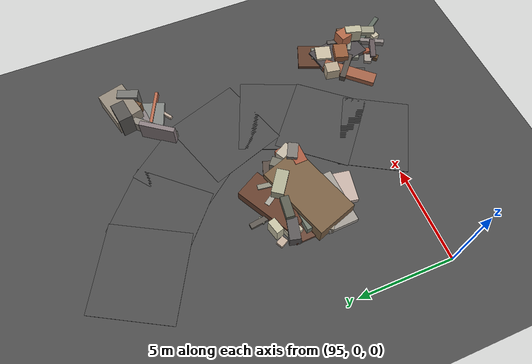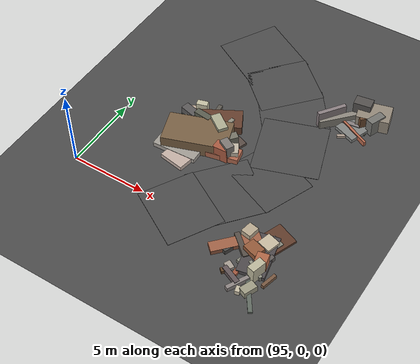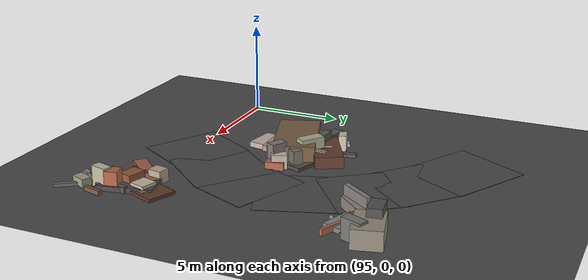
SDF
<sdf version="1.6">
 <world name="navitas_arena">
  <model name="ground_plane">
   <static>true</static>
   <link name="link">
    <collision name="collision">
     <geometry><plane><normal>0 0 1</normal><size>400 400</size></plane></geometry>
     <surface><friction><ode><mu>0.800</mu><mu2>0.800</mu2></ode></friction></surface>
    </collision>
    <visual name="visual">
     <cast_shadows>false</cast_shadows>
     <geometry><plane><normal>0 0 1</normal><size>400 400</size></plane></geometry>
     <material>
      <specular>0.04 0.04 0.04 1</specular>
      <script>
       <uri>file://media/materials/scripts/navitas_asphalt.material</uri>
       <name>Navitas/RealArenaAsphalt</name>
      </script>
     </material>
    </visual>
   </link>
  </model>
  <model name="road_zor_3_14">
   <static>true</static>
   <pose>102.558 0.167 0.040 0 0 1.047</pose>
   <link name="link">
    <collision name="col"><geometry><box><size>3.594 4.200 0.020</size></box></geometry></collision>
    <visual name="vis">
     <geometry><box><size>3.594 4.200 0.020</size></box></geometry>
     <material>
      <specular>0.04 0.04 0.04 1</specular>
      <script>
       <uri>file://media/materials/scripts/navitas_asphalt.material</uri>
       <name>Navitas/RealArenaAsphalt</name>
      </script>
     </material>
    </visual>
   </link>
  </model>
  <model name="road_zor_3_15">
   <static>true</static>
   <pose>104.213 2.500 0.040 0 0 0.871</pose>
   <link name="link">
    <collision name="col"><geometry><box><size>3.949 4.200 0.020</size></box></geometry></collision>
    <visual name="vis">
     <geometry><box><size>3.949 4.200 0.020</size></box></geometry>
     <material>
      <specular>0.04 0.04 0.04 1</specular>
      <script>
       <uri>file://media/materials/scripts/navitas_asphalt.material</uri>
       <name>Navitas/RealArenaAsphalt</name>
      </script>
     </material>
    </visual>
   </link>
  </model>
  <model name="road_zor_3_16">
   <static>true</static>
   <pose>105.679 4.833 0.040 0 0 1.177</pose>
   <link name="link">
    <collision name="col"><geometry><box><size>3.427 4.200 0.020</size></box></geometry></collision>
    <visual name="vis">
     <geometry><box><size>3.427 4.200 0.020</size></box></geometry>
     <material>
      <specular>0.04 0.04 0.04 1</specular>
      <script>
       <uri>file://media/materials/scripts/navitas_asphalt.material</uri>
       <name>Navitas/RealArenaAsphalt</name>
      </script>
     </material>
    </visual>
   </link>
  </model>
  <model name="road_zor_3_17">
   <static>true</static>
   <pose>105.639 7.566 0.040 0 0 1.894</pose>
   <link name="link">
    <collision name="col"><geometry><box><size>4.202 4.200 0.020</size></box></geometry></collision>
    <visual name="vis">
     <geometry><box><size>4.202 4.200 0.020</size></box></geometry>
     <material>
      <specular>0.04 0.04 0.04 1</specular>
      <script>
       <uri>file://media/materials/scripts/navitas_asphalt.material</uri>
       <name>Navitas/RealArenaAsphalt</name>
      </script>
     </material>
    </visual>
   </link>
  </model>
  <model name="road_zor_3_18">
   <static>true</static>
   <pose>104.328 10.157 0.040 0 0 2.225</pose>
   <link name="link">
    <collision name="col"><geometry><box><size>3.484 4.200 0.020</size></box></geometry></collision>
    <visual name="vis">
     <geometry><box><size>3.484 4.200 0.020</size></box></geometry>
     <material>
      <specular>0.04 0.04 0.04 1</specular>
      <script>
       <uri>file://media/materials/scripts/navitas_asphalt.material</uri>
       <name>Navitas/RealArenaAsphalt</name>
      </script>
     </material>
    </visual>
   </link>
  </model>
  <model name="road_zor_3_19">
   <static>true</static>
   <pose>102.519 12.091 0.040 0 0 2.415</pose>
   <link name="link">
    <collision name="col"><geometry><box><size>3.636 4.200 0.020</size></box></geometry></collision>
    <visual name="vis">
     <geometry><box><size>3.636 4.200 0.020</size></box></geometry>
     <material>
      <specular>0.04 0.04 0.04 1</specular>
      <script>
       <uri>file://media/materials/scripts/navitas_asphalt.material</uri>
       <name>Navitas/RealArenaAsphalt</name>
      </script>
     </material>
    </visual>
   </link>
  </model>
  <model name="road_zor_3_20">
   <static>true</static>
   <pose>99.948 13.861 0.040 0 0 2.634</pose>
   <link name="link">
    <collision name="col"><geometry><box><size>4.443 4.200 0.020</size></box></geometry></collision>
    <visual name="vis">
     <geometry><box><size>4.443 4.200 0.020</size></box></geometry>
     <material>
      <specular>0.04 0.04 0.04 1</specular>
      <script>
       <uri>file://media/materials/scripts/navitas_asphalt.material</uri>
       <name>Navitas/RealArenaAsphalt</name>
      </script>
     </material>
    </visual>
   </link>
  </model>
  <model name="deb_zor_8">
   <static>true</static>
   <pose>102.190 5.623 0.000 0 0 0</pose>
   <link name="link">
    <collision name="col_0">
     <pose>0.512 -0.691 0.608 0.000 0.000 1.076</pose>
     <geometry><box><size>0.536 0.849 1.216</size></box></geometry>
    </collision>
    <visual name="vis_0">
     <pose>0.512 -0.691 0.608 0.000 0.000 1.076</pose>
     <geometry><box><size>0.536 0.849 1.216</size></box></geometry>
     <material>
      <ambient>0.46 0.44 0.43 1</ambient>
      <diffuse>0.50 0.48 0.46 1</diffuse>
      <specular>0.05 0.05 0.045 1</specular>
     </material>
    </visual>
    <collision name="col_1">
     <pose>0.870 -0.426 0.378 0.000 0.000 0.501</pose>
     <geometry><box><size>0.507 0.813 0.756</size></box></geometry>
    </collision>
    <visual name="vis_1">
     <pose>0.870 -0.426 0.378 0.000 0.000 0.501</pose>
     <geometry><box><size>0.507 0.813 0.756</size></box></geometry>
     <material>
      <ambient>0.71 0.66 0.61 1</ambient>
      <diffuse>0.76 0.72 0.65 1</diffuse>
      <specular>0.05 0.05 0.045 1</specular>
     </material>
    </visual>
    <collision name="col_2">
     <pose>0.439 -0.686 0.128 0.000 0.000 0.502</pose>
     <geometry><box><size>1.207 0.236 0.255</size></box></geometry>
    </collision>
    <visual name="vis_2">
     <pose>0.439 -0.686 0.128 0.000 0.000 0.502</pose>
     <geometry><box><size>1.207 0.236 0.255</size></box></geometry>
     <material>
      <ambient>0.53 0.49 0.44 1</ambient>
      <diffuse>0.58 0.53 0.48 1</diffuse>
      <specular>0.05 0.05 0.045 1</specular>
     </material>
    </visual>
    <collision name="col_3">
     <pose>-0.618 0.152 0.070 0.000 0.000 2.048</pose>
     <geometry><box><size>1.197 0.206 0.140</size></box></geometry>
    </collision>
    <visual name="vis_3">
     <pose>-0.618 0.152 0.070 0.000 0.000 2.048</pose>
     <geometry><box><size>1.197 0.206 0.140</size></box></geometry>
     <material>
      <ambient>0.49 0.33 0.28 1</ambient>
      <diffuse>0.53 0.35 0.31 1</diffuse>
      <specular>0.05 0.05 0.045 1</specular>
     </material>
    </visual>
    <collision name="col_4">
     <pose>-0.214 0.234 0.099 0.000 0.000 1.710</pose>
     <geometry><box><size>1.182 0.122 0.198</size></box></geometry>
    </collision>
    <visual name="vis_4">
     <pose>-0.214 0.234 0.099 0.000 0.000 1.710</pose>
     <geometry><box><size>1.182 0.122 0.198</size></box></geometry>
     <material>
      <ambient>0.50 0.49 0.49 1</ambient>
      <diffuse>0.54 0.53 0.53 1</diffuse>
      <specular>0.05 0.05 0.045 1</specular>
     </material>
    </visual>
    <collision name="col_5">
     <pose>0.289 0.218 0.454 0.000 0.000 2.430</pose>
     <geometry><box><size>0.509 0.716 0.908</size></box></geometry>
    </collision>
    <visual name="vis_5">
     <pose>0.289 0.218 0.454 0.000 0.000 2.430</pose>
     <geometry><box><size>0.509 0.716 0.908</size></box></geometry>
     <material>
      <ambient>0.43 0.42 0.38 1</ambient>
      <diffuse>0.47 0.46 0.41 1</diffuse>
      <specular>0.05 0.05 0.045 1</specular>
     </material>
    </visual>
   </link>
  </model>
  <model name="deb_zor_50">
   <static>true</static>
   <pose>108.417 -1.913 0.000 0 0 0</pose>
   <link name="link">
    <collision name="col_0">
     <pose>0.464 -0.715 0.213 0.000 0.000 1.177</pose>
     <geometry><box><size>0.853 0.514 0.425</size></box></geometry>
    </collision>
    <visual name="vis_0">
     <pose>0.464 -0.715 0.213 0.000 0.000 1.177</pose>
     <geometry><box><size>0.853 0.514 0.425</size></box></geometry>
     <material>
      <ambient>0.58 0.57 0.49 1</ambient>
      <diffuse>0.63 0.62 0.53 1</diffuse>
      <specular>0.05 0.05 0.045 1</specular>
     </material>
    </visual>
    <collision name="col_1">
     <pose>0.290 0.975 0.496 0.000 0.000 1.788</pose>
     <geometry><box><size>0.669 0.689 0.993</size></box></geometry>
    </collision>
    <visual name="vis_1">
     <pose>0.290 0.975 0.496 0.000 0.000 1.788</pose>
     <geometry><box><size>0.669 0.689 0.993</size></box></geometry>
     <material>
      <ambient>0.65 0.38 0.26 1</ambient>
      <diffuse>0.70 0.41 0.28 1</diffuse>
      <specular>0.05 0.05 0.045 1</specular>
     </material>
    </visual>
    <collision name="col_2">
     <pose>-0.827 -0.438 0.165 0.000 0.000 2.722</pose>
     <geometry><box><size>1.259 0.297 0.330</size></box></geometry>
    </collision>
    <visual name="vis_2">
     <pose>-0.827 -0.438 0.165 0.000 0.000 2.722</pose>
     <geometry><box><size>1.259 0.297 0.330</size></box></geometry>
     <material>
      <ambient>0.36 0.32 0.32 1</ambient>
      <diffuse>0.39 0.34 0.35 1</diffuse>
      <specular>0.05 0.05 0.045 1</specular>
     </material>
    </visual>
    <collision name="col_3">
     <pose>0.319 0.364 0.543 0.000 0.000 1.294</pose>
     <geometry><box><size>0.909 0.482 1.086</size></box></geometry>
    </collision>
    <visual name="vis_3">
     <pose>0.319 0.364 0.543 0.000 0.000 1.294</pose>
     <geometry><box><size>0.909 0.482 1.086</size></box></geometry>
     <material>
      <ambient>0.69 0.68 0.57 1</ambient>
      <diffuse>0.75 0.73 0.62 1</diffuse>
      <specular>0.05 0.05 0.045 1</specular>
     </material>
    </visual>
    <collision name="col_4">
     <pose>1.112 0.360 0.124 0.000 0.000 1.325</pose>
     <geometry><box><size>1.017 0.198 0.247</size></box></geometry>
    </collision>
    <visual name="vis_4">
     <pose>1.112 0.360 0.124 0.000 0.000 1.325</pose>
     <geometry><box><size>1.017 0.198 0.247</size></box></geometry>
     <material>
      <ambient>0.44 0.32 0.24 1</ambient>
      <diffuse>0.48 0.35 0.26 1</diffuse>
      <specular>0.05 0.05 0.045 1</specular>
     </material>
    </visual>
    <collision name="col_5">
     <pose>0.601 -0.892 0.081 0.000 0.000 2.187</pose>
     <geometry><box><size>2.334 0.253 0.162</size></box></geometry>
    </collision>
    <visual name="vis_5">
     <pose>0.601 -0.892 0.081 0.000 0.000 2.187</pose>
     <geometry><box><size>2.334 0.253 0.162</size></box></geometry>
     <material>
      <ambient>0.35 0.39 0.35 1</ambient>
      <diffuse>0.38 0.42 0.38 1</diffuse>
      <specular>0.05 0.05 0.045 1</specular>
     </material>
    </visual>
    <collision name="col_6">
     <pose>0.005 -1.027 0.154 0.000 0.000 3.381</pose>
     <geometry><box><size>0.272 0.408 0.307</size></box></geometry>
    </collision>
    <visual name="vis_6">
     <pose>0.005 -1.027 0.154 0.000 0.000 3.381</pose>
     <geometry><box><size>0.272 0.408 0.307</size></box></geometry>
     <material>
      <ambient>0.73 0.68 0.60 1</ambient>
      <diffuse>0.78 0.74 0.65 1</diffuse>
      <specular>0.05 0.05 0.045 1</specular>
     </material>
    </visual>
   </link>
  </model>
  <model name="deb_zor_67">
   <static>true</static>
   <pose>108.276 10.808 0.000 0 0 0</pose>
   <link name="link">
    <collision name="col_0">
     <pose>-0.188 0.277 0.061 0.000 0.000 -0.184</pose>
     <geometry><box><size>1.859 0.137 0.121</size></box></geometry>
    </collision>
    <visual name="vis_0">
     <pose>-0.188 0.277 0.061 0.000 0.000 -0.184</pose>
     <geometry><box><size>1.859 0.137 0.121</size></box></geometry>
     <material>
      <ambient>0.36 0.37 0.33 1</ambient>
      <diffuse>0.39 0.40 0.35 1</diffuse>
      <specular>0.05 0.05 0.045 1</specular>
     </material>
    </visual>
    <collision name="col_1">
     <pose>-0.500 0.344 0.143 0.000 0.000 0.112</pose>
     <geometry><box><size>1.434 0.310 0.285</size></box></geometry>
    </collision>
    <visual name="vis_1">
     <pose>-0.500 0.344 0.143 0.000 0.000 0.112</pose>
     <geometry><box><size>1.434 0.310 0.285</size></box></geometry>
     <material>
      <ambient>0.49 0.46 0.46 1</ambient>
      <diffuse>0.53 0.50 0.50 1</diffuse>
      <specular>0.05 0.05 0.045 1</specular>
     </material>
    </visual>
    <collision name="col_2">
     <pose>0.039 -0.160 0.165 0.000 0.000 -0.452</pose>
     <geometry><box><size>2.307 0.162 0.331</size></box></geometry>
    </collision>
    <visual name="vis_2">
     <pose>0.039 -0.160 0.165 0.000 0.000 -0.452</pose>
     <geometry><box><size>2.307 0.162 0.331</size></box></geometry>
     <material>
      <ambient>0.67 0.39 0.29 1</ambient>
      <diffuse>0.72 0.42 0.31 1</diffuse>
      <specular>0.05 0.05 0.045 1</specular>
     </material>
    </visual>
    <collision name="col_3">
     <pose>-0.054 0.332 0.124 0.000 0.000 1.220</pose>
     <geometry><box><size>2.009 1.501 0.249</size></box></geometry>
    </collision>
    <visual name="vis_3">
     <pose>-0.054 0.332 0.124 0.000 0.000 1.220</pose>
     <geometry><box><size>2.009 1.501 0.249</size></box></geometry>
     <material>
      <ambient>0.47 0.48 0.47 1</ambient>
      <diffuse>0.51 0.52 0.51 1</diffuse>
      <specular>0.05 0.05 0.045 1</specular>
     </material>
    </visual>
    <collision name="col_4">
     <pose>-0.256 -0.626 0.089 0.000 0.000 0.593</pose>
     <geometry><box><size>1.070 0.155 0.179</size></box></geometry>
    </collision>
    <visual name="vis_4">
     <pose>-0.256 -0.626 0.089 0.000 0.000 0.593</pose>
     <geometry><box><size>1.070 0.155 0.179</size></box></geometry>
     <material>
      <ambient>0.69 0.62 0.56 1</ambient>
      <diffuse>0.74 0.67 0.61 1</diffuse>
      <specular>0.05 0.05 0.045 1</specular>
     </material>
    </visual>
   </link>
  </model>
  <model name="deb_zor_145">
   <static>true</static>
   <pose>107.622 -1.942 0.000 0 0 0</pose>
   <link name="link">
    <collision name="col_0">
     <pose>-0.600 -0.330 0.121 0.000 0.000 0.842</pose>
     <geometry><box><size>0.251 0.279 0.243</size></box></geometry>
    </collision>
    <visual name="vis_0">
     <pose>-0.600 -0.330 0.121 0.000 0.000 0.842</pose>
     <geometry><box><size>0.251 0.279 0.243</size></box></geometry>
     <material>
      <ambient>0.38 0.26 0.17 1</ambient>
      <diffuse>0.41 0.29 0.18 1</diffuse>
      <specular>0.05 0.05 0.045 1</specular>
     </material>
    </visual>
    <collision name="col_1">
     <pose>-0.480 0.115 0.101 0.000 0.000 2.640</pose>
     <geometry><box><size>0.520 0.410 0.202</size></box></geometry>
    </collision>
    <visual name="vis_1">
     <pose>-0.480 0.115 0.101 0.000 0.000 2.640</pose>
     <geometry><box><size>0.520 0.410 0.202</size></box></geometry>
     <material>
      <ambient>0.61 0.58 0.53 1</ambient>
      <diffuse>0.66 0.62 0.58 1</diffuse>
      <specular>0.05 0.05 0.045 1</specular>
     </material>
    </visual>
    <collision name="col_2">
     <pose>0.060 -0.048 0.096 0.000 0.000 1.558</pose>
     <geometry><box><size>0.437 0.269 0.192</size></box></geometry>
    </collision>
    <visual name="vis_2">
     <pose>0.060 -0.048 0.096 0.000 0.000 1.558</pose>
     <geometry><box><size>0.437 0.269 0.192</size></box></geometry>
     <material>
      <ambient>0.59 0.32 0.23 1</ambient>
      <diffuse>0.64 0.35 0.25 1</diffuse>
      <specular>0.05 0.05 0.045 1</specular>
     </material>
    </visual>
    <collision name="col_3">
     <pose>0.622 -0.466 0.147 0.000 0.000 1.082</pose>
     <geometry><box><size>1.798 0.246 0.294</size></box></geometry>
    </collision>
    <visual name="vis_3">
     <pose>0.622 -0.466 0.147 0.000 0.000 1.082</pose>
     <geometry><box><size>1.798 0.246 0.294</size></box></geometry>
     <material>
      <ambient>0.51 0.49 0.48 1</ambient>
      <diffuse>0.56 0.53 0.52 1</diffuse>
      <specular>0.05 0.05 0.045 1</specular>
     </material>
    </visual>
   </link>
  </model>
  <model name="deb_zor_167">
   <static>true</static>
   <pose>99.680 4.952 0.000 0 0 0</pose>
   <link name="link">
    <collision name="col_0">
     <pose>0.128 -0.548 0.076 0.000 0.000 0.109</pose>
     <geometry><box><size>0.228 0.387 0.152</size></box></geometry>
    </collision>
    <visual name="vis_0">
     <pose>0.128 -0.548 0.076 0.000 0.000 0.109</pose>
     <geometry><box><size>0.228 0.387 0.152</size></box></geometry>
     <material>
      <ambient>0.74 0.71 0.65 1</ambient>
      <diffuse>0.79 0.76 0.71 1</diffuse>
      <specular>0.05 0.05 0.045 1</specular>
     </material>
    </visual>
    <collision name="col_1">
     <pose>0.179 1.111 0.088 0.000 0.000 0.038</pose>
     <geometry><box><size>2.829 1.074 0.175</size></box></geometry>
    </collision>
    <visual name="vis_1">
     <pose>0.179 1.111 0.088 0.000 0.000 0.038</pose>
     <geometry><box><size>2.829 1.074 0.175</size></box></geometry>
     <material>
      <ambient>0.39 0.26 0.20 1</ambient>
      <diffuse>0.42 0.28 0.22 1</diffuse>
      <specular>0.05 0.05 0.045 1</specular>
     </material>
    </visual>
    <collision name="col_2">
     <pose>0.065 -0.096 0.124 0.000 0.000 -0.614</pose>
     <geometry><box><size>2.058 0.301 0.249</size></box></geometry>
    </collision>
    <visual name="vis_2">
     <pose>0.065 -0.096 0.124 0.000 0.000 -0.614</pose>
     <geometry><box><size>2.058 0.301 0.249</size></box></geometry>
     <material>
      <ambient>0.36 0.34 0.29 1</ambient>
      <diffuse>0.38 0.37 0.31 1</diffuse>
      <specular>0.05 0.05 0.045 1</specular>
     </material>
    </visual>
    <collision name="col_3">
     <pose>0.752 -0.733 0.147 0.000 0.000 1.394</pose>
     <geometry><box><size>3.200 1.651 0.294</size></box></geometry>
    </collision>
    <visual name="vis_3">
     <pose>0.752 -0.733 0.147 0.000 0.000 1.394</pose>
     <geometry><box><size>3.200 1.651 0.294</size></box></geometry>
     <material>
      <ambient>0.72 0.65 0.61 1</ambient>
      <diffuse>0.78 0.70 0.66 1</diffuse>
      <specular>0.05 0.05 0.045 1</specular>
     </material>
    </visual>
    <collision name="col_4">
     <pose>0.138 -0.814 0.156 0.000 0.000 0.040</pose>
     <geometry><box><size>2.897 1.578 0.312</size></box></geometry>
    </collision>
    <visual name="vis_4">
     <pose>0.138 -0.814 0.156 0.000 0.000 0.040</pose>
     <geometry><box><size>2.897 1.578 0.312</size></box></geometry>
     <material>
      <ambient>0.60 0.58 0.54 1</ambient>
      <diffuse>0.64 0.62 0.59 1</diffuse>
      <specular>0.05 0.05 0.045 1</specular>
     </material>
    </visual>
    <collision name="col_5">
     <pose>0.594 -0.602 0.095 0.000 0.000 -0.638</pose>
     <geometry><box><size>1.125 0.213 0.190</size></box></geometry>
    </collision>
    <visual name="vis_5">
     <pose>0.594 -0.602 0.095 0.000 0.000 -0.638</pose>
     <geometry><box><size>1.125 0.213 0.190</size></box></geometry>
     <material>
      <ambient>0.75 0.71 0.61 1</ambient>
      <diffuse>0.81 0.77 0.66 1</diffuse>
      <specular>0.05 0.05 0.045 1</specular>
     </material>
    </visual>
   </link>
  </model>
  <model name="deb_zor_193">
   <static>true</static>
   <pose>107.903 -0.961 0.000 0 0 0</pose>
   <link name="link">
    <collision name="col_0">
     <pose>0.253 0.759 0.117 0.000 0.000 1.204</pose>
     <geometry><box><size>2.720 0.764 0.234</size></box></geometry>
    </collision>
    <visual name="vis_0">
     <pose>0.253 0.759 0.117 0.000 0.000 1.204</pose>
     <geometry><box><size>2.720 0.764 0.234</size></box></geometry>
     <material>
      <ambient>0.49 0.49 0.45 1</ambient>
      <diffuse>0.53 0.53 0.48 1</diffuse>
      <specular>0.05 0.05 0.045 1</specular>
     </material>
    </visual>
    <collision name="col_1">
     <pose>0.655 -0.388 0.150 0.000 0.000 2.600</pose>
     <geometry><box><size>1.259 0.207 0.301</size></box></geometry>
    </collision>
    <visual name="vis_1">
     <pose>0.655 -0.388 0.150 0.000 0.000 2.600</pose>
     <geometry><box><size>1.259 0.207 0.301</size></box></geometry>
     <material>
      <ambient>0.53 0.54 0.49 1</ambient>
      <diffuse>0.58 0.58 0.52 1</diffuse>
      <specular>0.05 0.05 0.045 1</specular>
     </material>
    </visual>
    <collision name="col_2">
     <pose>-0.023 0.565 0.334 0.000 0.000 2.841</pose>
     <geometry><box><size>0.960 0.747 0.667</size></box></geometry>
    </collision>
    <visual name="vis_2">
     <pose>-0.023 0.565 0.334 0.000 0.000 2.841</pose>
     <geometry><box><size>0.960 0.747 0.667</size></box></geometry>
     <material>
      <ambient>0.54 0.33 0.21 1</ambient>
      <diffuse>0.59 0.36 0.23 1</diffuse>
      <specular>0.05 0.05 0.045 1</specular>
     </material>
    </visual>
    <collision name="col_3">
     <pose>0.818 -0.059 0.161 0.000 0.000 1.329</pose>
     <geometry><box><size>1.920 0.251 0.322</size></box></geometry>
    </collision>
    <visual name="vis_3">
     <pose>0.818 -0.059 0.161 0.000 0.000 1.329</pose>
     <geometry><box><size>1.920 0.251 0.322</size></box></geometry>
     <material>
      <ambient>0.35 0.34 0.32 1</ambient>
      <diffuse>0.38 0.36 0.35 1</diffuse>
      <specular>0.05 0.05 0.045 1</specular>
     </material>
    </visual>
   </link>
  </model>
  <model name="deb_zor_203">
   <static>true</static>
   <pose>107.409 0.213 0.000 0 0 0</pose>
   <link name="link">
    <collision name="col_0">
     <pose>0.760 -0.596 0.135 0.000 0.000 1.773</pose>
     <geometry><box><size>2.872 1.665 0.269</size></box></geometry>
    </collision>
    <visual name="vis_0">
     <pose>0.760 -0.596 0.135 0.000 0.000 1.773</pose>
     <geometry><box><size>2.872 1.665 0.269</size></box></geometry>
     <material>
      <ambient>0.29 0.27 0.28 1</ambient>
      <diffuse>0.31 0.29 0.30 1</diffuse>
      <specular>0.05 0.05 0.045 1</specular>
     </material>
    </visual>
    <collision name="col_1">
     <pose>0.962 0.608 0.082 0.000 0.000 1.189</pose>
     <geometry><box><size>2.192 1.508 0.163</size></box></geometry>
    </collision>
    <visual name="vis_1">
     <pose>0.962 0.608 0.082 0.000 0.000 1.189</pose>
     <geometry><box><size>2.192 1.508 0.163</size></box></geometry>
     <material>
      <ambient>0.35 0.22 0.16 1</ambient>
      <diffuse>0.38 0.24 0.17 1</diffuse>
      <specular>0.05 0.05 0.045 1</specular>
     </material>
    </visual>
    <collision name="col_2">
     <pose>-0.799 -0.576 0.152 0.000 0.000 0.823</pose>
     <geometry><box><size>2.977 0.686 0.304</size></box></geometry>
    </collision>
    <visual name="vis_2">
     <pose>-0.799 -0.576 0.152 0.000 0.000 0.823</pose>
     <geometry><box><size>2.977 0.686 0.304</size></box></geometry>
     <material>
      <ambient>0.59 0.36 0.26 1</ambient>
      <diffuse>0.64 0.39 0.28 1</diffuse>
      <specular>0.05 0.05 0.045 1</specular>
     </material>
    </visual>
    <collision name="col_3">
     <pose>-0.744 -0.740 0.151 0.000 0.000 1.175</pose>
     <geometry><box><size>1.474 0.289 0.302</size></box></geometry>
    </collision>
    <visual name="vis_3">
     <pose>-0.744 -0.740 0.151 0.000 0.000 1.175</pose>
     <geometry><box><size>1.474 0.289 0.302</size></box></geometry>
     <material>
      <ambient>0.28 0.27 0.26 1</ambient>
      <diffuse>0.30 0.29 0.28 1</diffuse>
      <specular>0.05 0.05 0.045 1</specular>
     </material>
    </visual>
    <collision name="col_4">
     <pose>0.887 0.281 0.213 0.000 0.000 2.863</pose>
     <geometry><box><size>0.868 0.870 0.425</size></box></geometry>
    </collision>
    <visual name="vis_4">
     <pose>0.887 0.281 0.213 0.000 0.000 2.863</pose>
     <geometry><box><size>0.868 0.870 0.425</size></box></geometry>
     <material>
      <ambient>0.74 0.69 0.59 1</ambient>
      <diffuse>0.79 0.74 0.64 1</diffuse>
      <specular>0.05 0.05 0.045 1</specular>
     </material>
    </visual>
    <collision name="col_5">
     <pose>-0.387 -0.571 0.171 0.000 0.000 2.429</pose>
     <geometry><box><size>1.709 0.318 0.342</size></box></geometry>
    </collision>
    <visual name="vis_5">
     <pose>-0.387 -0.571 0.171 0.000 0.000 2.429</pose>
     <geometry><box><size>1.709 0.318 0.342</size></box></geometry>
     <material>
      <ambient>0.31 0.29 0.26 1</ambient>
      <diffuse>0.34 0.31 0.28 1</diffuse>
      <specular>0.05 0.05 0.045 1</specular>
     </material>
    </visual>
    <collision name="col_6">
     <pose>-0.387 0.344 0.329 0.000 0.000 2.962</pose>
     <geometry><box><size>0.640 0.748 0.657</size></box></geometry>
    </collision>
    <visual name="vis_6">
     <pose>-0.387 0.344 0.329 0.000 0.000 2.962</pose>
     <geometry><box><size>0.640 0.748 0.657</size></box></geometry>
     <material>
      <ambient>0.67 0.62 0.53 1</ambient>
      <diffuse>0.73 0.67 0.57 1</diffuse>
      <specular>0.05 0.05 0.045 1</specular>
     </material>
    </visual>
   </link>
  </model>
  <model name="deb_zor_241">
   <static>true</static>
   <pose>99.491 7.049 0.000 0 0 0</pose>
   <link name="link">
    <collision name="col_0">
     <pose>0.576 -0.679 0.510 0.000 0.000 3.024</pose>
     <geometry><box><size>1.113 0.428 1.019</size></box></geometry>
    </collision>
    <visual name="vis_0">
     <pose>0.576 -0.679 0.510 0.000 0.000 3.024</pose>
     <geometry><box><size>1.113 0.428 1.019</size></box></geometry>
     <material>
      <ambient>0.34 0.35 0.30 1</ambient>
      <diffuse>0.36 0.37 0.32 1</diffuse>
      <specular>0.05 0.05 0.045 1</specular>
     </material>
    </visual>
    <collision name="col_1">
     <pose>0.712 0.587 0.076 0.000 0.000 2.383</pose>
     <geometry><box><size>0.264 0.354 0.152</size></box></geometry>
    </collision>
    <visual name="vis_1">
     <pose>0.712 0.587 0.076 0.000 0.000 2.383</pose>
     <geometry><box><size>0.264 0.354 0.152</size></box></geometry>
     <material>
      <ambient>0.52 0.52 0.46 1</ambient>
      <diffuse>0.56 0.56 0.50 1</diffuse>
      <specular>0.05 0.05 0.045 1</specular>
     </material>
    </visual>
    <collision name="col_2">
     <pose>-0.076 0.191 0.455 0.000 0.000 3.409</pose>
     <geometry><box><size>0.710 0.401 0.910</size></box></geometry>
    </collision>
    <visual name="vis_2">
     <pose>-0.076 0.191 0.455 0.000 0.000 3.409</pose>
     <geometry><box><size>0.710 0.401 0.910</size></box></geometry>
     <material>
      <ambient>0.73 0.71 0.60 1</ambient>
      <diffuse>0.78 0.76 0.65 1</diffuse>
      <specular>0.05 0.05 0.045 1</specular>
     </material>
    </visual>
    <collision name="col_3">
     <pose>-0.203 -0.526 0.232 0.000 0.000 3.444</pose>
     <geometry><box><size>1.036 0.739 0.465</size></box></geometry>
    </collision>
    <visual name="vis_3">
     <pose>-0.203 -0.526 0.232 0.000 0.000 3.444</pose>
     <geometry><box><size>1.036 0.739 0.465</size></box></geometry>
     <material>
      <ambient>0.70 0.68 0.59 1</ambient>
      <diffuse>0.76 0.73 0.64 1</diffuse>
      <specular>0.05 0.05 0.045 1</specular>
     </material>
    </visual>
    <collision name="col_4">
     <pose>0.756 0.112 0.089 0.000 0.000 1.696</pose>
     <geometry><box><size>2.240 0.275 0.178</size></box></geometry>
    </collision>
    <visual name="vis_4">
     <pose>0.756 0.112 0.089 0.000 0.000 1.696</pose>
     <geometry><box><size>2.240 0.275 0.178</size></box></geometry>
     <material>
      <ambient>0.34 0.32 0.29 1</ambient>
      <diffuse>0.37 0.35 0.32 1</diffuse>
      <specular>0.05 0.05 0.045 1</specular>
     </material>
    </visual>
    <collision name="col_5">
     <pose>-0.435 -0.710 0.140 0.000 0.000 3.086</pose>
     <geometry><box><size>1.253 0.163 0.279</size></box></geometry>
    </collision>
    <visual name="vis_5">
     <pose>-0.435 -0.710 0.140 0.000 0.000 3.086</pose>
     <geometry><box><size>1.253 0.163 0.279</size></box></geometry>
     <material>
      <ambient>0.37 0.40 0.38 1</ambient>
      <diffuse>0.40 0.43 0.42 1</diffuse>
      <specular>0.05 0.05 0.045 1</specular>
     </material>
    </visual>
   </link>
  </model>
  <model name="deb_zor_265">
   <static>true</static>
   <pose>99.242 5.437 0.000 0 0 0</pose>
   <link name="link">
    <collision name="col_0">
     <pose>-0.222 0.256 0.061 0.000 0.000 1.063</pose>
     <geometry><box><size>0.389 0.200 0.122</size></box></geometry>
    </collision>
    <visual name="vis_0">
     <pose>-0.222 0.256 0.061 0.000 0.000 1.063</pose>
     <geometry><box><size>0.389 0.200 0.122</size></box></geometry>
     <material>
      <ambient>0.48 0.43 0.41 1</ambient>
      <diffuse>0.51 0.47 0.45 1</diffuse>
      <specular>0.05 0.05 0.045 1</specular>
     </material>
    </visual>
    <collision name="col_1">
     <pose>-0.370 -0.913 0.238 0.000 0.000 2.482</pose>
     <geometry><box><size>1.097 0.427 0.477</size></box></geometry>
    </collision>
    <visual name="vis_1">
     <pose>-0.370 -0.913 0.238 0.000 0.000 2.482</pose>
     <geometry><box><size>1.097 0.427 0.477</size></box></geometry>
     <material>
      <ambient>0.59 0.56 0.49 1</ambient>
      <diffuse>0.64 0.60 0.53 1</diffuse>
      <specular>0.05 0.05 0.045 1</specular>
     </material>
    </visual>
    <collision name="col_2">
     <pose>-0.471 0.076 0.112 0.000 0.000 3.174</pose>
     <geometry><box><size>0.209 0.231 0.223</size></box></geometry>
    </collision>
    <visual name="vis_2">
     <pose>-0.471 0.076 0.112 0.000 0.000 3.174</pose>
     <geometry><box><size>0.209 0.231 0.223</size></box></geometry>
     <material>
      <ambient>0.62 0.36 0.23 1</ambient>
      <diffuse>0.67 0.39 0.25 1</diffuse>
      <specular>0.05 0.05 0.045 1</specular>
     </material>
    </visual>
    <collision name="col_3">
     <pose>0.759 -0.557 0.131 0.000 0.000 1.749</pose>
     <geometry><box><size>0.468 0.263 0.261</size></box></geometry>
    </collision>
    <visual name="vis_3">
     <pose>0.759 -0.557 0.131 0.000 0.000 1.749</pose>
     <geometry><box><size>0.468 0.263 0.261</size></box></geometry>
     <material>
      <ambient>0.37 0.24 0.16 1</ambient>
      <diffuse>0.40 0.26 0.18 1</diffuse>
      <specular>0.05 0.05 0.045 1</specular>
     </material>
    </visual>
   </link>
  </model>
  <model name="deb_zor_278">
   <static>true</static>
   <pose>99.612 6.830 0.000 0 0 0</pose>
   <link name="link">
    <collision name="col_0">
     <pose>-0.809 0.324 0.099 0.000 0.000 2.047</pose>
     <geometry><box><size>0.445 0.357 0.198</size></box></geometry>
    </collision>
    <visual name="vis_0">
     <pose>-0.809 0.324 0.099 0.000 0.000 2.047</pose>
     <geometry><box><size>0.445 0.357 0.198</size></box></geometry>
     <material>
      <ambient>0.70 0.63 0.56 1</ambient>
      <diffuse>0.76 0.68 0.61 1</diffuse>
      <specular>0.05 0.05 0.045 1</specular>
     </material>
    </visual>
    <collision name="col_1">
     <pose>0.076 -0.062 0.206 0.000 0.000 1.059</pose>
     <geometry><box><size>0.576 0.623 0.412</size></box></geometry>
    </collision>
    <visual name="vis_1">
     <pose>0.076 -0.062 0.206 0.000 0.000 1.059</pose>
     <geometry><box><size>0.576 0.623 0.412</size></box></geometry>
     <material>
      <ambient>0.62 0.35 0.26 1</ambient>
      <diffuse>0.67 0.38 0.28 1</diffuse>
      <specular>0.05 0.05 0.045 1</specular>
     </material>
    </visual>
    <collision name="col_2">
     <pose>0.777 0.323 0.086 0.000 0.000 1.180</pose>
     <geometry><box><size>0.186 0.317 0.171</size></box></geometry>
    </collision>
    <visual name="vis_2">
     <pose>0.777 0.323 0.086 0.000 0.000 1.180</pose>
     <geometry><box><size>0.186 0.317 0.171</size></box></geometry>
     <material>
      <ambient>0.45 0.47 0.43 1</ambient>
      <diffuse>0.49 0.51 0.46 1</diffuse>
      <specular>0.05 0.05 0.045 1</specular>
     </material>
    </visual>
    <collision name="col_3">
     <pose>-0.595 -0.336 0.374 0.000 0.000 2.893</pose>
     <geometry><box><size>1.122 0.551 0.748</size></box></geometry>
    </collision>
    <visual name="vis_3">
     <pose>-0.595 -0.336 0.374 0.000 0.000 2.893</pose>
     <geometry><box><size>1.122 0.551 0.748</size></box></geometry>
     <material>
      <ambient>0.34 0.33 0.32 1</ambient>
      <diffuse>0.36 0.35 0.35 1</diffuse>
      <specular>0.05 0.05 0.045 1</specular>
     </material>
    </visual>
   </link>
  </model>
  <model name="deb_zor_307">
   <static>true</static>
   <pose>101.447 5.305 0.000 0 0 0</pose>
   <link name="link">
    <collision name="col_0">
     <pose>0.154 1.037 0.093 0.000 0.000 -0.341</pose>
     <geometry><box><size>2.996 1.119 0.186</size></box></geometry>
    </collision>
    <visual name="vis_0">
     <pose>0.154 1.037 0.093 0.000 0.000 -0.341</pose>
     <geometry><box><size>2.996 1.119 0.186</size></box></geometry>
     <material>
      <ambient>0.32 0.28 0.25 1</ambient>
      <diffuse>0.35 0.30 0.27 1</diffuse>
      <specular>0.05 0.05 0.045 1</specular>
     </material>
    </visual>
    <collision name="col_1">
     <pose>0.080 0.307 0.078 0.000 0.000 2.087</pose>
     <geometry><box><size>0.298 0.370 0.157</size></box></geometry>
    </collision>
    <visual name="vis_1">
     <pose>0.080 0.307 0.078 0.000 0.000 2.087</pose>
     <geometry><box><size>0.298 0.370 0.157</size></box></geometry>
     <material>
      <ambient>0.50 0.54 0.50 1</ambient>
      <diffuse>0.54 0.58 0.54 1</diffuse>
      <specular>0.05 0.05 0.045 1</specular>
     </material>
    </visual>
    <collision name="col_2">
     <pose>0.809 -0.422 0.205 0.000 0.000 0.198</pose>
     <geometry><box><size>2.517 0.955 0.410</size></box></geometry>
    </collision>
    <visual name="vis_2">
     <pose>0.809 -0.422 0.205 0.000 0.000 0.198</pose>
     <geometry><box><size>2.517 0.955 0.410</size></box></geometry>
     <material>
      <ambient>0.64 0.38 0.29 1</ambient>
      <diffuse>0.69 0.41 0.31 1</diffuse>
      <specular>0.05 0.05 0.045 1</specular>
     </material>
    </visual>
    <collision name="col_3">
     <pose>-0.076 -0.227 0.184 0.000 0.000 0.495</pose>
     <geometry><box><size>0.545 0.487 0.369</size></box></geometry>
    </collision>
    <visual name="vis_3">
     <pose>-0.076 -0.227 0.184 0.000 0.000 0.495</pose>
     <geometry><box><size>0.545 0.487 0.369</size></box></geometry>
     <material>
      <ambient>0.36 0.35 0.32 1</ambient>
      <diffuse>0.39 0.37 0.35 1</diffuse>
      <specular>0.05 0.05 0.045 1</specular>
     </material>
    </visual>
    <collision name="col_4">
     <pose>1.024 -0.539 0.509 0.000 0.000 1.604</pose>
     <geometry><box><size>0.648 0.964 1.018</size></box></geometry>
    </collision>
    <visual name="vis_4">
     <pose>1.024 -0.539 0.509 0.000 0.000 1.604</pose>
     <geometry><box><size>0.648 0.964 1.018</size></box></geometry>
     <material>
      <ambient>0.62 0.33 0.24 1</ambient>
      <diffuse>0.67 0.36 0.26 1</diffuse>
      <specular>0.05 0.05 0.045 1</specular>
     </material>
    </visual>
   </link>
  </model>
  <model name="chic_zor_4">
   <static>true</static>
   <pose>101.034 5.130 0.000 0 0 0</pose>
   <link name="link">
    <collision name="col_0">
     <pose>-0.349 1.662 0.307 0.000 0.000 0.498</pose>
     <geometry><box><size>3.339 1.489 0.615</size></box></geometry>
    </collision>
    <visual name="vis_0">
     <pose>-0.349 1.662 0.307 0.000 0.000 0.498</pose>
     <geometry><box><size>3.339 1.489 0.615</size></box></geometry>
     <material>
      <ambient>0.37 0.24 0.17 1</ambient>
      <diffuse>0.40 0.25 0.18 1</diffuse>
      <specular>0.05 0.05 0.045 1</specular>
     </material>
    </visual>
    <collision name="col_1">
     <pose>0.193 1.209 0.316 0.000 0.000 -0.988</pose>
     <geometry><box><size>1.992 0.268 0.632</size></box></geometry>
    </collision>
    <visual name="vis_1">
     <pose>0.193 1.209 0.316 0.000 0.000 -0.988</pose>
     <geometry><box><size>1.992 0.268 0.632</size></box></geometry>
     <material>
      <ambient>0.61 0.60 0.57 1</ambient>
      <diffuse>0.66 0.65 0.61 1</diffuse>
      <specular>0.05 0.05 0.045 1</specular>
     </material>
    </visual>
    <collision name="col_2">
     <pose>-0.537 -0.072 0.497 0.000 0.000 0.325</pose>
     <geometry><box><size>4.086 2.202 0.994</size></box></geometry>
    </collision>
    <visual name="vis_2">
     <pose>-0.537 -0.072 0.497 0.000 0.000 0.325</pose>
     <geometry><box><size>4.086 2.202 0.994</size></box></geometry>
     <material>
      <ambient>0.44 0.35 0.25 1</ambient>
      <diffuse>0.48 0.38 0.27 1</diffuse>
      <specular>0.05 0.05 0.045 1</specular>
     </material>
    </visual>
    <collision name="col_3">
     <pose>-0.780 0.394 0.289 0.000 0.000 -0.547</pose>
     <geometry><box><size>0.716 0.447 0.579</size></box></geometry>
    </collision>
    <visual name="vis_3">
     <pose>-0.780 0.394 0.289 0.000 0.000 -0.547</pose>
     <geometry><box><size>0.716 0.447 0.579</size></box></geometry>
     <material>
      <ambient>0.43 0.30 0.25 1</ambient>
      <diffuse>0.47 0.32 0.27 1</diffuse>
      <specular>0.05 0.05 0.045 1</specular>
     </material>
    </visual>
    <collision name="col_4">
     <pose>0.301 1.067 0.612 0.000 0.000 -0.623</pose>
     <geometry><box><size>1.314 0.626 1.224</size></box></geometry>
    </collision>
    <visual name="vis_4">
     <pose>0.301 1.067 0.612 0.000 0.000 -0.623</pose>
     <geometry><box><size>1.314 0.626 1.224</size></box></geometry>
     <material>
      <ambient>0.64 0.63 0.54 1</ambient>
      <diffuse>0.69 0.69 0.58 1</diffuse>
      <specular>0.05 0.05 0.045 1</specular>
     </material>
    </visual>
    <collision name="col_5">
     <pose>-1.416 -0.119 0.335 0.000 0.000 0.074</pose>
     <geometry><box><size>1.648 1.897 0.670</size></box></geometry>
    </collision>
    <visual name="vis_5">
     <pose>-1.416 -0.119 0.335 0.000 0.000 0.074</pose>
     <geometry><box><size>1.648 1.897 0.670</size></box></geometry>
     <material>
      <ambient>0.42 0.44 0.40 1</ambient>
      <diffuse>0.45 0.48 0.43 1</diffuse>
      <specular>0.05 0.05 0.045 1</specular>
     </material>
    </visual>
    <collision name="col_6">
     <pose>0.462 0.780 0.354 0.000 0.000 1.433</pose>
     <geometry><box><size>2.725 0.254 0.707</size></box></geometry>
    </collision>
    <visual name="vis_6">
     <pose>0.462 0.780 0.354 0.000 0.000 1.433</pose>
     <geometry><box><size>2.725 0.254 0.707</size></box></geometry>
     <material>
      <ambient>0.52 0.52 0.46 1</ambient>
      <diffuse>0.57 0.56 0.50 1</diffuse>
      <specular>0.05 0.05 0.045 1</specular>
     </material>
    </visual>
   </link>
  </model>
  <model name="chic_zor_5">
   <static>true</static>
   <pose>108.221 11.260 0.000 0 0 0</pose>
   <link name="link">
    <collision name="col_0">
     <pose>1.059 0.404 0.538 0.000 0.000 1.186</pose>
     <geometry><box><size>1.107 0.507 1.076</size></box></geometry>
    </collision>
    <visual name="vis_0">
     <pose>1.059 0.404 0.538 0.000 0.000 1.186</pose>
     <geometry><box><size>1.107 0.507 1.076</size></box></geometry>
     <material>
      <ambient>0.43 0.42 0.41 1</ambient>
      <diffuse>0.46 0.46 0.44 1</diffuse>
      <specular>0.05 0.05 0.045 1</specular>
     </material>
    </visual>
    <collision name="col_1">
     <pose>0.226 0.164 0.477 0.000 0.000 2.402</pose>
     <geometry><box><size>0.511 0.378 0.954</size></box></geometry>
    </collision>
    <visual name="vis_1">
     <pose>0.226 0.164 0.477 0.000 0.000 2.402</pose>
     <geometry><box><size>0.511 0.378 0.954</size></box></geometry>
     <material>
      <ambient>0.43 0.29 0.20 1</ambient>
      <diffuse>0.46 0.32 0.21 1</diffuse>
      <specular>0.05 0.05 0.045 1</specular>
     </material>
    </visual>
    <collision name="col_2">
     <pose>-0.799 0.075 0.314 0.000 0.000 0.824</pose>
     <geometry><box><size>3.577 0.389 0.628</size></box></geometry>
    </collision>
    <visual name="vis_2">
     <pose>-0.799 0.075 0.314 0.000 0.000 0.824</pose>
     <geometry><box><size>3.577 0.389 0.628</size></box></geometry>
     <material>
      <ambient>0.52 0.50 0.47 1</ambient>
      <diffuse>0.56 0.54 0.50 1</diffuse>
      <specular>0.05 0.05 0.045 1</specular>
     </material>
    </visual>
    <collision name="col_3">
     <pose>-1.564 -0.443 0.587 0.000 0.000 0.944</pose>
     <geometry><box><size>1.892 0.261 1.174</size></box></geometry>
    </collision>
    <visual name="vis_3">
     <pose>-1.564 -0.443 0.587 0.000 0.000 0.944</pose>
     <geometry><box><size>1.892 0.261 1.174</size></box></geometry>
     <material>
      <ambient>0.51 0.46 0.47 1</ambient>
      <diffuse>0.55 0.50 0.51 1</diffuse>
      <specular>0.05 0.05 0.045 1</specular>
     </material>
    </visual>
    <collision name="col_4">
     <pose>0.707 0.939 0.478 0.000 0.000 0.255</pose>
     <geometry><box><size>2.071 1.448 0.956</size></box></geometry>
    </collision>
    <visual name="vis_4">
     <pose>0.707 0.939 0.478 0.000 0.000 0.255</pose>
     <geometry><box><size>2.071 1.448 0.956</size></box></geometry>
     <material>
      <ambient>0.53 0.50 0.44 1</ambient>
      <diffuse>0.58 0.54 0.48 1</diffuse>
      <specular>0.05 0.05 0.045 1</specular>
     </material>
    </visual>
    <collision name="col_5">
     <pose>-0.108 0.989 0.694 0.000 0.000 0.151</pose>
     <geometry><box><size>1.121 0.719 1.388</size></box></geometry>
    </collision>
    <visual name="vis_5">
     <pose>-0.108 0.989 0.694 0.000 0.000 0.151</pose>
     <geometry><box><size>1.121 0.719 1.388</size></box></geometry>
     <material>
      <ambient>0.31 0.30 0.29 1</ambient>
      <diffuse>0.33 0.32 0.31 1</diffuse>
      <specular>0.05 0.05 0.045 1</specular>
     </material>
    </visual>
   </link>
  </model>
 </world>
</sdf>
